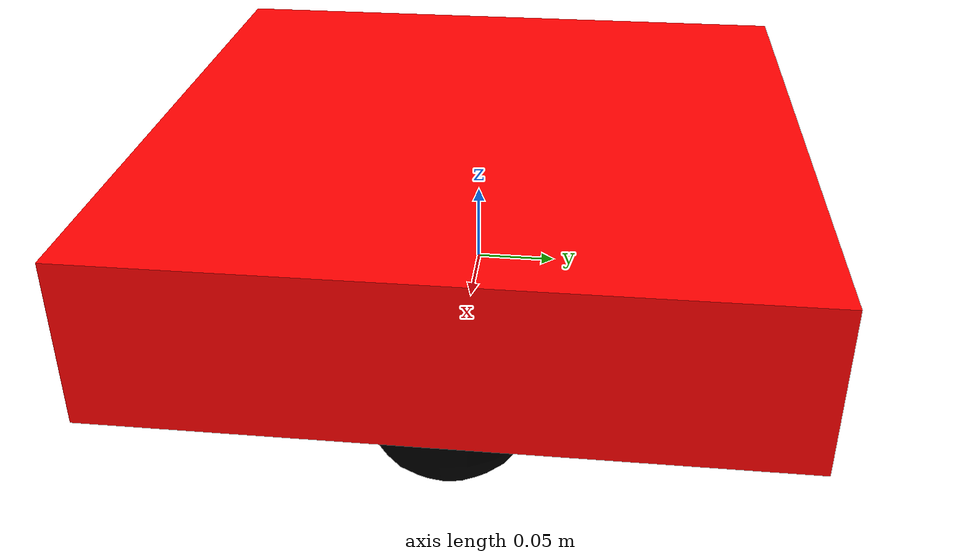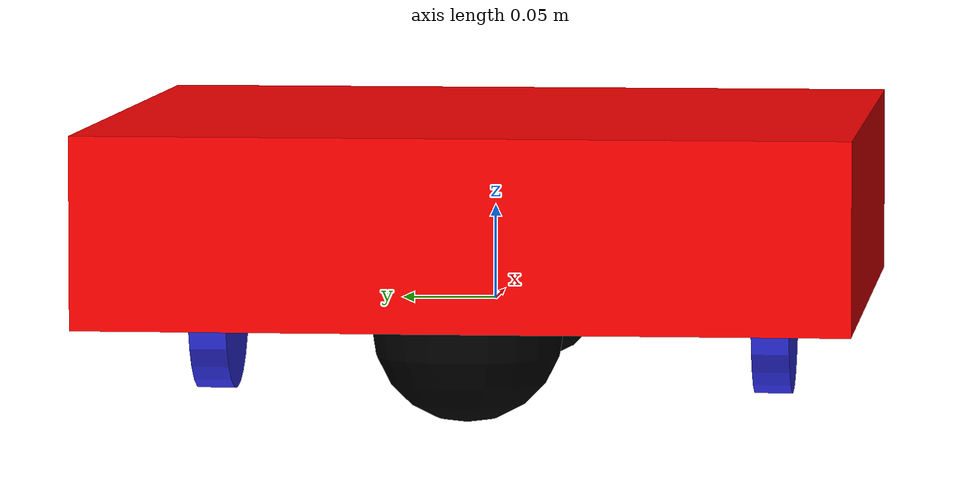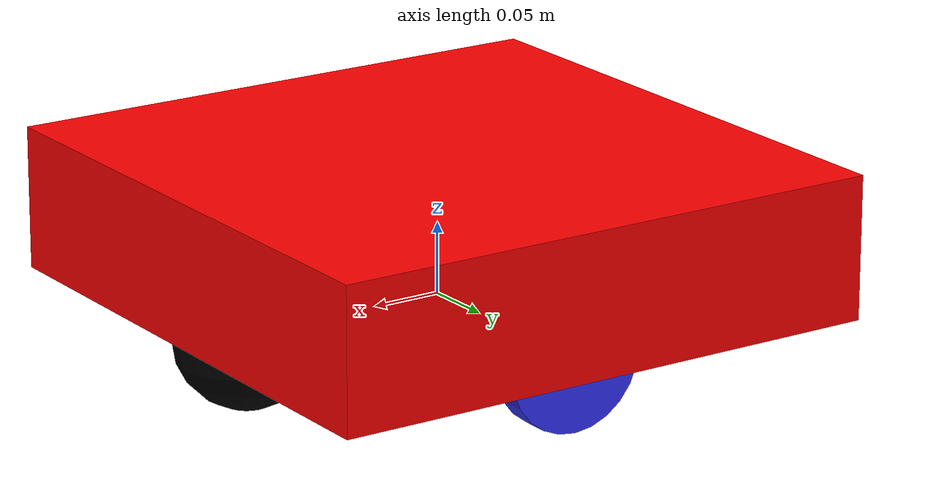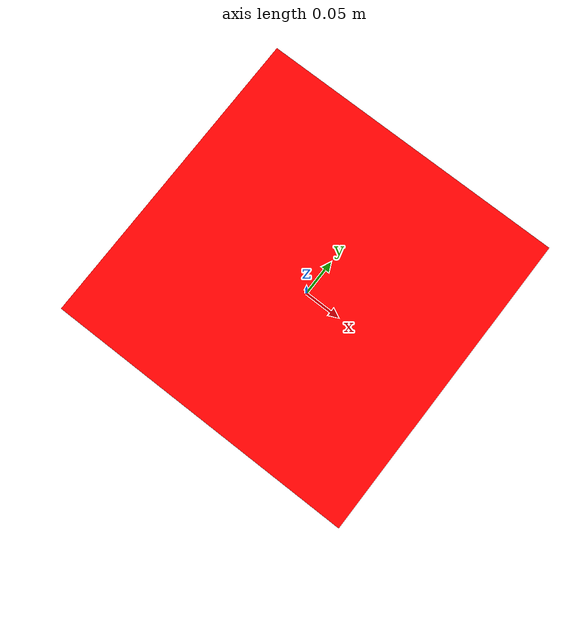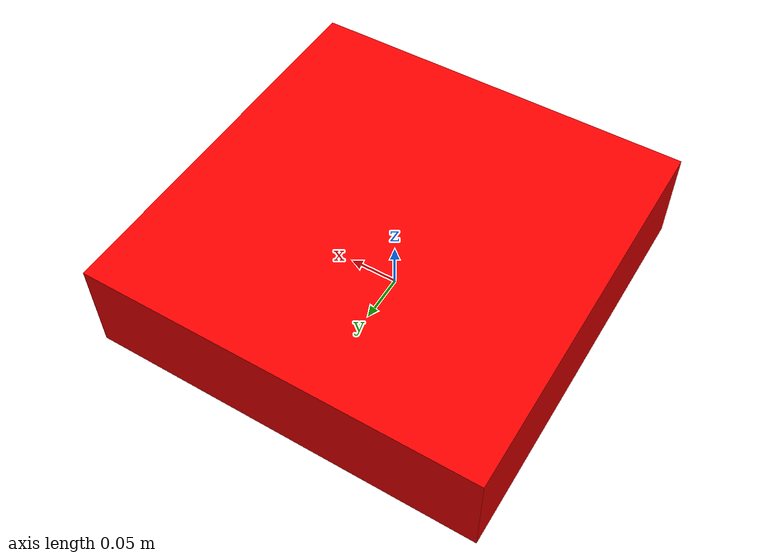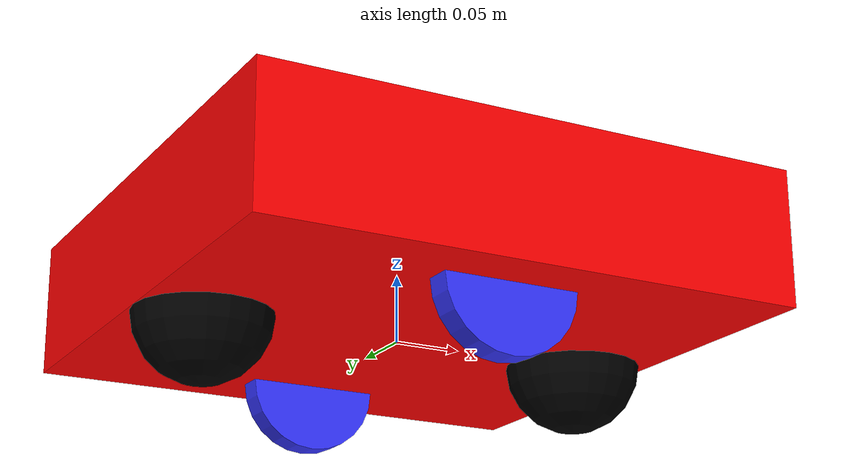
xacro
<?xml version="1.0"?>
<robot xmlns:xacro="http://www.ros.org/wiki/xacro">

    <xacro:include filename="inertial.xacro" />

    <xacro:property name="chassis_length" value="0.4" />
    <xacro:property name="chassis_width" value="0.4" />
    <xacro:property name="chassis_height" value="0.1" />
    <xacro:property name="chassis_mass" value="1" />

    <xacro:property name="wheel_length" value="0.02" />
    <xacro:property name="wheel_radius" value="0.05" />
    <xacro:property name="wheel_offset_x" value="0.1" />
    <xacro:property name="wheel_offset_z" value="0.02" />
    <xacro:property name="wheel_seperation" value="0.3" />
    <xacro:property name="wheel_mass" value="0.2" />
    <xacro:property name="caster_wheel_mass" value="0.01" />
    <xacro:property name="caster_wheel_radius" value="0.05" />

    <link name="base_link"/>

    <joint name="base_footprint_joint" type="fixed">
        <parent link="base_link"/>
        <child link="base_footprint"/>
        <origin xyz="0 0 0"/>
    </joint>
    <link name="base_footprint"/>
<!-- DE XE -->
    <joint name="chassis_joint" type="fixed">
        <parent link="base_link"/>
        <child link="chassis_link"/>
        <origin xyz="${-chassis_length/2} 0 0"/>
    </joint>

    <link name="chassis_link">
        <visual>
            <origin xyz="${chassis_width/2} 0 ${chassis_height/2}" rpy="0 0 0"/>
            <geometry>
                <box size= "${chassis_length} ${chassis_width} ${chassis_height}"/>
            </geometry>
            <material name="red"/>
        </visual>

        <collision>
            <origin xyz="${chassis_width/2} 0 ${chassis_height/2}" rpy="0 0 0"/>
            <geometry>
                <box size= "${chassis_length} ${chassis_width} ${chassis_height}"/>
            </geometry>
        </collision>

        <xacro:inertial_box mass="${chassis_mass}" x="${chassis_length}" y="${chassis_width}" z="${chassis_height}">
            <origin xyz="${chassis_length/2} 0 ${chassis_height/2}" rpy="0 0 0"/>
        </xacro:inertial_box>
    </link>

    <gazebo reference="chassis_link">
        <material>Gazebo/Red</material>
    </gazebo>

<!-- WHEEL -->
<!-- LEFT WHEEL -->
    <joint name="left_wheel_joint" type="continuous">
        <parent link="base_link"/>
        <child link="left_wheel_link"/>
        <origin xyz="0 ${wheel_seperation/2} 0" rpy="-${pi/2} 0 0"/>
        <axis xyz="0 0 1"/>
        <!-- axis of rotation -->
    </joint>

    <link name="left_wheel_link">
        <visual>
            <geometry>
                <cylinder length="${wheel_length}" radius="${wheel_radius}" />
            </geometry>
            <material name="blue"/>
        </visual>

        <collision>
            <origin xyz="0 0 0"/>
            <geometry>
                <cylinder length="${wheel_length}" radius="${wheel_radius}" />
            </geometry>
        </collision>

        <xacro:inertial_cylinder mass="${wheel_mass}" length="${wheel_length}" radius="${wheel_radius}">
            <origin xyz="0 0 0" rpy="0 0 0"/>
        </xacro:inertial_cylinder>
    </link>

    <gazebo reference="left_wheel_link">
        <material>Gazebo/Blue</material>
    </gazebo>

<!-- RIGHT WHEEL -->
    <joint name="right_wheel_joint" type="continuous">
        <parent link="base_link"/>
        <child link="right_wheel_link"/>
        <origin xyz="0 -${wheel_seperation/2} 0" rpy="${pi/2} 0 0"/>
        <axis xyz="0 0 -1"/>
        <!-- axis of rotation -->
    </joint>

    <link name="right_wheel_link">
        <visual>
            <geometry>
                <cylinder length="${wheel_length}" radius="${wheel_radius}" />
            </geometry>
            <material name="blue"/>
        </visual>

        <collision>
            <origin xyz="0 0 0"/>
            <geometry>
                <cylinder length="${wheel_length}" radius="${wheel_radius}" />
            </geometry>
        </collision>

        <xacro:inertial_cylinder mass="${wheel_mass}" length="${wheel_length}" radius="${wheel_radius}">
            <origin xyz="0 0 0" rpy="0 0 0"/>
        </xacro:inertial_cylinder>
    </link>

    <gazebo reference="right_wheel_link">
        <material>Gazebo/Blue</material>
    </gazebo>

<!-- CASTER WHEELS -->

    <joint name="caster_wheel_joint_front" type="fixed">
        <parent link="base_link"/>
        <child link="caster_wheel_front"/>
        <origin xyz="0.15 0 0" rpy="0 0 0"/>
    </joint>

    <link name="caster_wheel_front">
        <visual>
            <geometry>
                <sphere radius="0.05" />
            </geometry>
            <material name="black"/>
        </visual>

        <collision>
            <origin xyz="0 0 0"/>
            <geometry>
                <sphere radius="${caster_wheel_radius}" />
            </geometry>
        </collision>

        <xacro:inertial_sphere mass="${caster_wheel_mass}" radius="${caster_wheel_radius}">
            <origin xyz="0 0 0" rpy="0 0 0"/>
        </xacro:inertial_sphere>
    </link>

    <gazebo reference="caster_wheel_front">
        <material>Gazebo/Black</material>
        <mu1 value="0.01"/>
        <mu2 value="0.01"/>
    </gazebo>

    <joint name="caster_wheel_joint_back" type="fixed">
        <parent link="base_link"/>
        <child link="caster_wheel_back"/>
        <origin xyz="-0.15 0 0" rpy="0 0 0"/>
    </joint>

    <link name="caster_wheel_back">
        <visual>
            <geometry>
                <sphere radius="${caster_wheel_radius}" />
            </geometry>
            <material name="black"/>
        </visual>

        <collision>
            <origin xyz="0 0 0"/>
            <geometry>
                <sphere radius="0.05" />
            </geometry>
        </collision>
        <xacro:inertial_sphere mass="${caster_wheel_mass}" radius="${caster_wheel_radius}">
            <origin xyz="0 0 0" rpy="0 0 0"/>
        </xacro:inertial_sphere>
    </link>

    <gazebo reference="caster_wheel_back">
        <material>Gazebo/Black</material>
        <mu1 value="0.01"/>
        <mu2 value="0.01"/>
    </gazebo>

</robot>

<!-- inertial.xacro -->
<robot xmlns:xacro="http://www.ros.org/wiki/xacro" >

    <!-- This file is not a robot in and of itself, it just contains some useful tags that could be included in any robot -->
    <!-- Specify some colours -->

    <material name="white">
        <color rgba="1 1 1 1" />
    </material>

    <material name="orange">
        <color rgba="1 0.3 0.1 1"/>
    </material>

    <material name="blue">
        <color rgba="0.2 0.2 1 1"/>
    </material>

    <material name="black">
        <color rgba="0 0 0 1"/>
    </material>

    <material name="red">
        <color rgba="1 0 0 1"/>
    </material>

    <material name="mycolor">
        <color rgba="0.5 0.5 0.5 1"/>
    </material>

    <!-- Specify some standard inertial calculations https://en.wikipedia.org/wiki/List_of_moments_of_inertia -->
    <!-- These make use of xacro's mathematical functionality -->

    <xacro:macro name="inertial_sphere" params="mass radius *origin">
        <inertial>
            <xacro:insert_block name="origin"/>
            <mass value="${mass}" />
            <inertia ixx="${(2/5) * mass * (radius*radius)}" ixy="0.0" ixz="0.0"
                    iyy="${(2/5) * mass * (radius*radius)}" iyz="0.0"
                    izz="${(2/5) * mass * (radius*radius)}" />
        </inertial>
    </xacro:macro>

    <xacro:macro name="inertial_box" params="mass x y z *origin">
        <inertial>
            <xacro:insert_block name="origin"/>
            <mass value="${mass}" />
            <inertia ixx="${(1/12) * mass * (y*y+z*z)}" ixy="0.0" ixz="0.0"
                    iyy="${(1/12) * mass * (x*x+z*z)}" iyz="0.0"
                    izz="${(1/12) * mass * (x*x+y*y)}" />
        </inertial>
    </xacro:macro>

    <xacro:macro name="inertial_cylinder" params="mass length radius *origin">
        <inertial>
            <xacro:insert_block name="origin"/>
            <mass value="${mass}" />
            <inertia ixx="${(1/12) * mass * (3*radius*radius + length*length)}" ixy="0.0" ixz="0.0"
                    iyy="${(1/12) * mass * (3*radius*radius + length*length)}" iyz="0.0"
                    izz="${(1/2) * mass * (radius*radius)}" />
        </inertial>
    </xacro:macro>

</robot>
